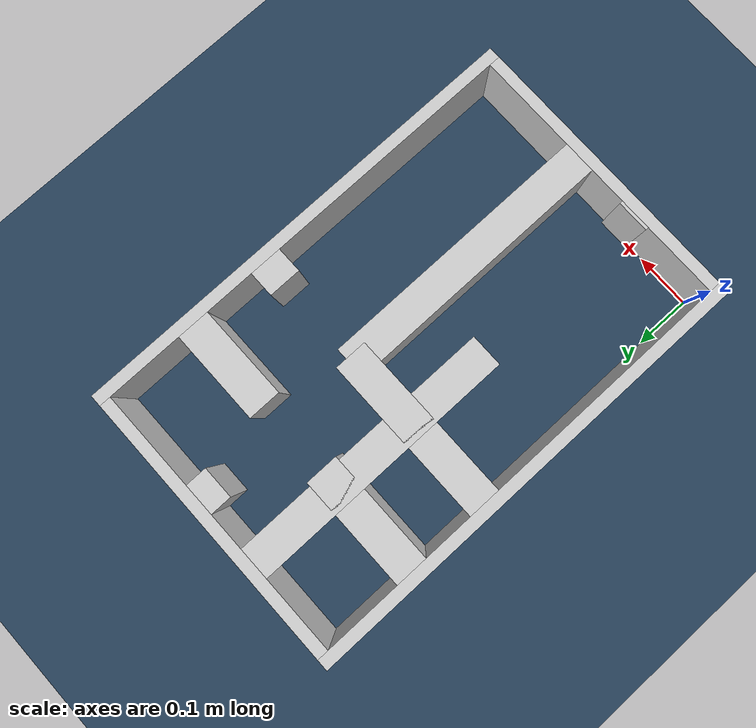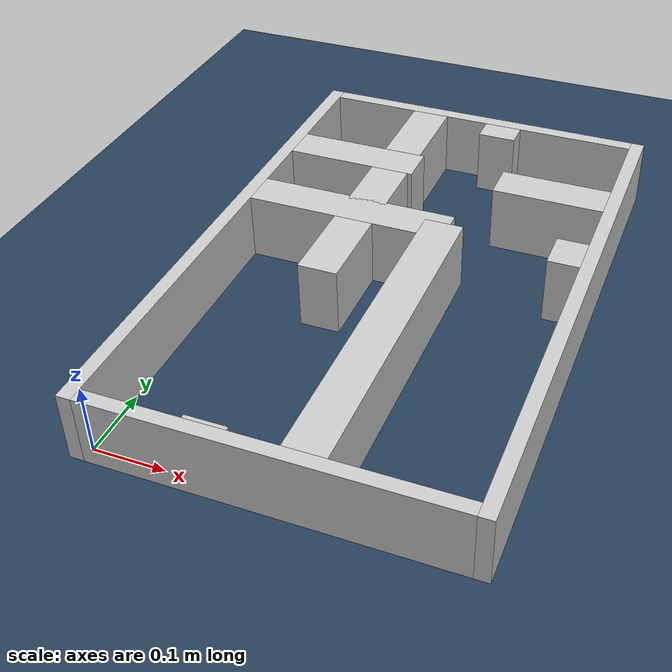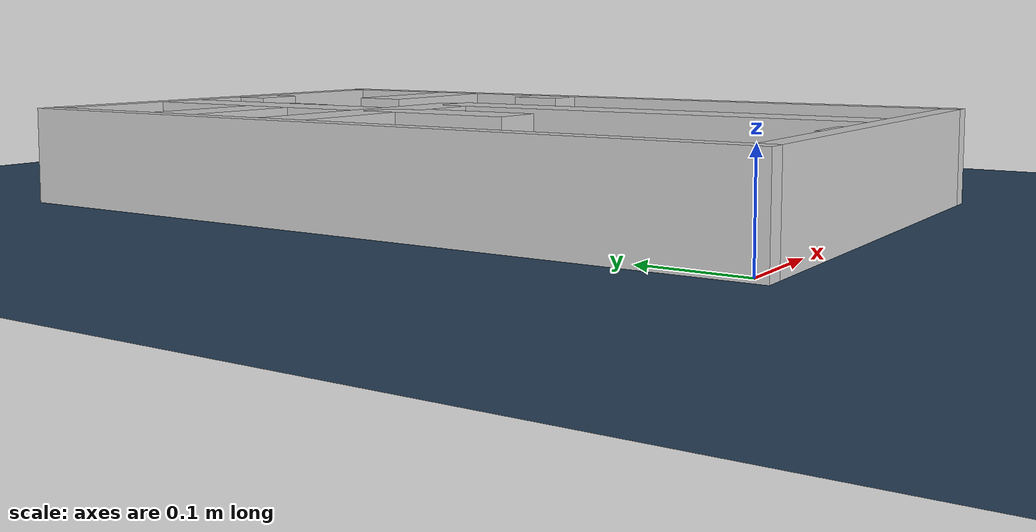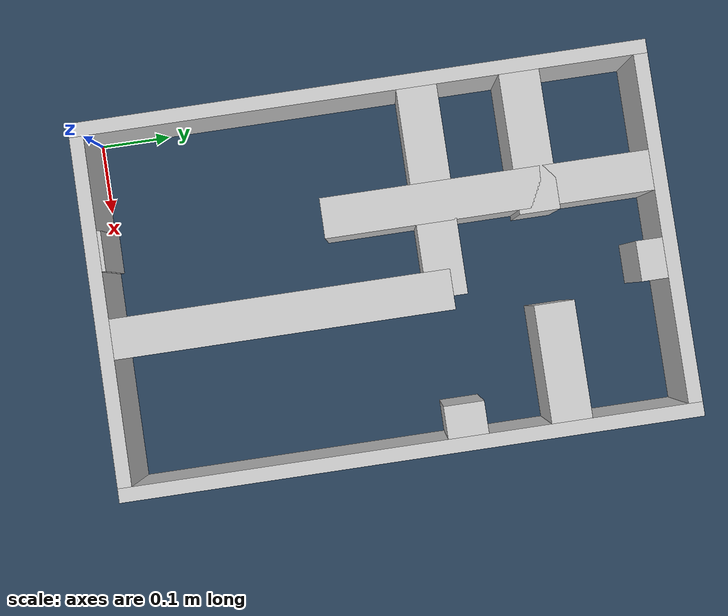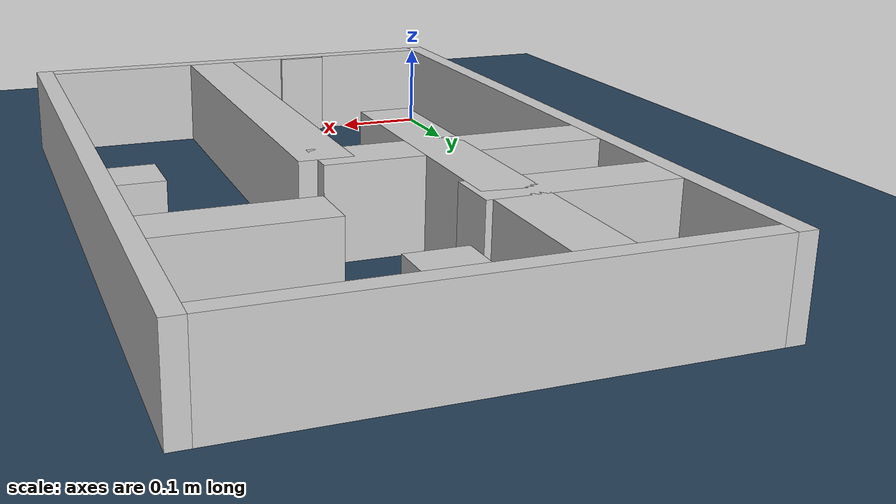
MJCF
<?xml version="1.0" ?>
<mujoco model="generated_real_template">
  <compiler angle="degree"/>
  <option timestep="0.002" integrator="implicitfast" iterations="100" cone="elliptic"/>
  <default>
    <geom density="1"/>
  </default>
  <asset>
    <texture builtin="gradient" height="3072" rgb1="0.3 0.5 0.7" rgb2="0 0 0" type="skybox" width="512"/>
    <texture builtin="checker" height="300" mark="edge" markrgb="0.8 0.8 0.8" name="groundplane" rgb1="0.2 0.3 0.4" rgb2="0.1 0.2 0.3" type="2d" width="300"/>
    <material name="groundplane" reflectance="0.2" texrepeat="5 5" texture="groundplane" texuniform="true"/>
  </asset>
  <worldbody>
    <light dir="0 0 -1" directional="true" pos="0 0 1.5"/>
    <geom name="floor" type="plane" condim="4" friction="0.5 0.005 0.001" material="groundplane" size="0 0 0.05"/>
    <body name="walls">
      <geom name="wall_boundary_left" type="box" condim="4" friction="1.0 0.005 0.0001" rgba="0.8 0.8 0.8 1" pos="-0.010000 0.387500 0.050000" euler="0 0 0.000000" size="0.010000 0.407500 0.050000"/>
      <geom name="wall_boundary_right" type="box" condim="4" friction="1.0 0.005 0.0001" rgba="0.8 0.8 0.8 1" pos="0.500000 0.387500 0.050000" euler="0 0 0.000000" size="0.010000 0.407500 0.050000"/>
      <geom name="wall_boundary_bottom" type="box" condim="4" friction="1.0 0.005 0.0001" rgba="0.8 0.8 0.8 1" pos="0.245000 -0.010000 0.050000" euler="0 0 0.000000" size="0.245000 0.010000 0.050000"/>
      <geom name="wall_boundary_top" type="box" condim="4" friction="1.0 0.005 0.0001" rgba="0.8 0.8 0.8 1" pos="0.245000 0.785000 0.050000" euler="0 0 0.000000" size="0.245000 0.010000 0.050000"/>
      <geom name="wall_inner_1_1" type="box" condim="4" friction="1.0 0.005 0.0001" rgba="0.8 0.8 0.8 1" pos="0.147775 0.468543 0.050000" euler="0 0 0.000000" size="0.147775 0.028500 0.050000"/>
      <geom name="wall_inner_1_2" type="box" condim="4" friction="1.0 0.005 0.0001" rgba="0.8 0.8 0.8 1" pos="0.467260 0.468543 0.050000" euler="0 0 0.000000" size="0.022740 0.028500 0.050000"/>
      <geom name="wall_inner_2_1" type="box" condim="4" friction="1.0 0.005 0.0001" rgba="0.8 0.8 0.8 1" pos="0.098938 0.613058 0.050000" euler="0 0 0.000000" size="0.098938 0.028500 0.050000"/>
      <geom name="wall_inner_2_2" type="box" condim="4" friction="1.0 0.005 0.0001" rgba="0.8 0.8 0.8 1" pos="0.407689 0.613058 0.050000" euler="0 0 0.000000" size="0.082311 0.028500 0.050000"/>
      <geom name="wall_inner_3_1" type="box" condim="4" friction="1.0 0.005 0.0001" rgba="0.8 0.8 0.8 1" pos="0.286130 0.238596 0.050000" euler="0 0 90.000000" size="0.238596 0.028500 0.050000"/>
      <geom name="wall_inner_3_2" type="box" condim="4" friction="1.0 0.005 0.0001" rgba="0.8 0.8 0.8 1" pos="0.286130 0.756283 0.050000" euler="0 0 90.000000" size="0.018717 0.028500 0.050000"/>
      <geom name="wall_inner_4_1" type="box" condim="4" friction="1.0 0.005 0.0001" rgba="0.8 0.8 0.8 1" pos="0.162729 0.002745 0.050000" euler="0 0 90.000000" size="0.002745 0.028500 0.050000"/>
      <geom name="wall_inner_4_2" type="box" condim="4" friction="1.0 0.005 0.0001" rgba="0.8 0.8 0.8 1" pos="0.162729 0.543590 0.050000" euler="0 0 90.000000" size="0.231410 0.028500 0.050000"/>
    </body>
  </worldbody>
</mujoco>
